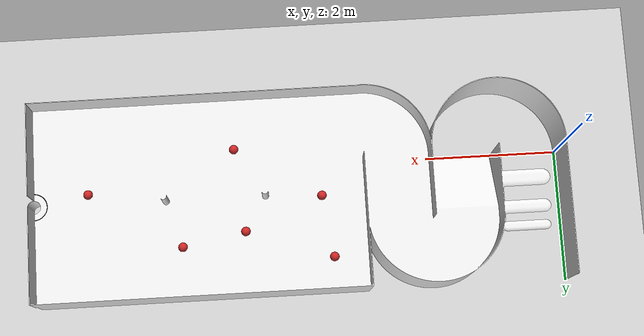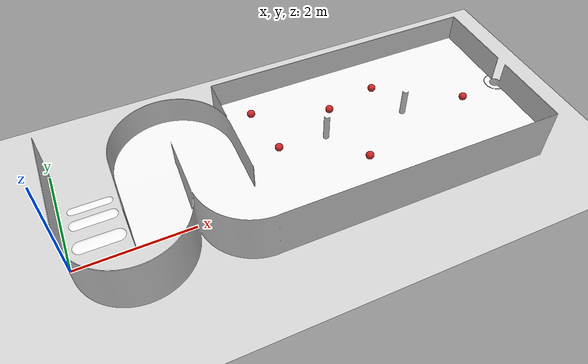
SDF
<sdf version="1.6">
 <world name="default">
  <model name="ground_plane">
   <static>1</static>
   <link name="link">
    <collision name="collision">
     <geometry><plane><normal>0 0 1</normal><size>100 100</size></plane></geometry>
     <surface><friction><ode><mu>100</mu><mu2>50</mu2></ode></friction></surface>
    </collision>
    <visual name="visual">
     <cast_shadows>0</cast_shadows>
     <geometry><plane><normal>0 0 1</normal><size>100 100</size></plane></geometry>
     <material>
      <script><uri>file://media/materials/scripts/gazebo.material</uri><name>Gazebo/Grey</name></script>
     </material>
    </visual>
   </link>
  </model>
  <light name="sun" type="directional">
   <pose>0 0 10 0 -0 0</pose>
   <diffuse>0.8 0.8 0.8 1</diffuse>
   <specular>0.1 0.1 0.1 1</specular>
   <attenuation>
    <range>1000</range>
    <constant>0.9</constant>
    <linear>0.01</linear>
    <quadratic>0.001</quadratic>
   </attenuation>
   <direction>-0.5 0.5 -1</direction>
  </light>
  <model name="field">
   <pose>0 0 0 1.5707 -0 -1.5707</pose>
   <static>1</static>
   <link name="field">
    <collision name="field_collision">
     <geometry><mesh><uri>file://worlds/map_final_3.stl</uri><scale>0.1 0.1 0.1</scale></mesh></geometry>
     <max_contacts>100</max_contacts>
     <surface><friction><ode><mu>100</mu><mu2>50</mu2></ode></friction></surface>
    </collision>
    <visual name="field_visual">
     <geometry><mesh><uri>file://worlds/map_final_3.stl</uri><scale>0.1 0.1 0.1</scale></mesh></geometry>
     <material>
      <script><uri>file://media/materials/scripts/gazebo.material</uri><name>Gazebo/White</name></script>
     </material>
    </visual>
   </link>
  </model>
  <model name="line2">
   <pose>0 0 0.01 1.5707 -0 -1.5707</pose>
   <static>1</static>
   <link name="line">
    <visual name="field_visual">
     <geometry><mesh><uri>file://worlds/map_final_3_goalline.stl</uri><scale>0.1 0.1 0.1</scale></mesh></geometry>
     <material>
      <script><uri>file://media/materials/scripts/gazebo.material</uri><name>Gazebo/Black</name></script>
     </material>
    </visual>
   </link>
  </model>
  <gravity>0 0 -9.8</gravity>
  <magnetic_field>6e-06 2.3e-05 -4.2e-05</magnetic_field>
  <atmosphere type="adiabatic"/>
  <physics name="default_physics" default="0" type="ode">
   <max_step_size>0.0004</max_step_size>
   <real_time_factor>1</real_time_factor>
   <real_time_update_rate>2500</real_time_update_rate>
  </physics>
  <scene><ambient>0.4 0.4 0.4 1</ambient><background>0.7 0.7 0.7 1</background><shadows>1</shadows></scene>
  <spherical_coordinates>
   <surface_model>EARTH_WGS84</surface_model>
   <latitude_deg>0</latitude_deg>
   <longitude_deg>0</longitude_deg>
   <elevation>0</elevation>
   <heading_deg>0</heading_deg>
  </spherical_coordinates>
  <model name="blue_ball_3">
   <link name="link_0">
    <inertial>
     <mass>0.1</mass>
     <inertia><ixx>0.11</ixx><ixy>0</ixy><ixz>0</ixz><iyy>0.11</iyy><iyz>0</iyz><izz>0.11</izz></inertia>
    </inertial>
    <visual name="visual">
     <geometry><sphere><radius>0.07</radius></sphere></geometry>
     <material>
      <lighting>1</lighting>
      <script><uri>file://media/materials/scripts/gazebo.material</uri><name>Gazebo/Red</name></script>
      <ambient>0 0 1 1</ambient>
      <diffuse>0 0 0.5 1</diffuse>
      <specular>0.01 0.01 0.5 1</specular>
      <emissive>0 0 0.5 1</emissive>
      <shader type="vertex"><normal_map>__default__</normal_map></shader>
     </material>
    </visual>
    <collision name="collision">
     <geometry><sphere><radius>0.07</radius></sphere></geometry>
     <surface>
      <friction>
       <ode><mu>0.05</mu><mu2>0.05</mu2><fdir1>0 0 0</fdir1><slip1>0.1</slip1><slip2>0.1</slip2></ode>
       <torsional>
        <coefficient>10.57</coefficient>
        <patch_radius>0.5</patch_radius>
        <surface_radius>0</surface_radius>
        <use_patch_radius>1</use_patch_radius>
        <ode><slip>0.1</slip></ode>
       </torsional>
      </friction>
      <bounce><restitution_coefficient>0</restitution_coefficient><threshold>1e+06</threshold></bounce>
      <contact>
       <collide_without_contact>0</collide_without_contact>
       <collide_without_contact_bitmask>1</collide_without_contact_bitmask>
       <collide_bitmask>1</collide_bitmask>
       <ode>
        <soft_cfm>0</soft_cfm>
        <soft_erp>0.2</soft_erp>
        <kp>1e+13</kp>
        <kd>1</kd>
        <max_vel>10</max_vel>
        <min_depth>0</min_depth>
       </ode>
       <bullet>
        <split_impulse>1</split_impulse>
        <split_impulse_penetration_threshold>-0.01</split_impulse_penetration_threshold>
        <soft_cfm>0</soft_cfm>
        <soft_erp>0.2</soft_erp>
        <kp>1e+13</kp>
        <kd>1</kd>
       </bullet>
      </contact>
     </surface>
    </collision>
   </link>
   <static>0</static>
   <pose>3.52552 1.50395 0.56966 -0.000663 0.001649 -1e-06</pose>
  </model>
  <model name="blue_ball_3_0">
   <link name="link_0">
    <inertial>
     <mass>0.1</mass>
     <inertia><ixx>0.11</ixx><ixy>0</ixy><ixz>0</ixz><iyy>0.11</iyy><iyz>0</iyz><izz>0.11</izz></inertia>
    </inertial>
    <visual name="visual">
     <geometry><sphere><radius>0.07</radius></sphere></geometry>
     <material>
      <lighting>1</lighting>
      <script><uri>file://media/materials/scripts/gazebo.material</uri><name>Gazebo/Red</name></script>
      <ambient>0 0 1 1</ambient>
      <diffuse>0 0 0.5 1</diffuse>
      <specular>0.01 0.01 0.5 1</specular>
      <emissive>0 0 0.5 1</emissive>
      <shader type="vertex"><normal_map>__default__</normal_map></shader>
     </material>
    </visual>
    <collision name="collision">
     <geometry><sphere><radius>0.07</radius></sphere></geometry>
     <surface>
      <friction>
       <ode><mu>0.05</mu><mu2>0.05</mu2><fdir1>0 0 0</fdir1><slip1>0.1</slip1><slip2>0.1</slip2></ode>
       <torsional>
        <coefficient>10.57</coefficient>
        <patch_radius>0.5</patch_radius>
        <surface_radius>0</surface_radius>
        <use_patch_radius>1</use_patch_radius>
        <ode><slip>0.1</slip></ode>
       </torsional>
      </friction>
      <bounce><restitution_coefficient>0</restitution_coefficient><threshold>1e+06</threshold></bounce>
      <contact>
       <collide_without_contact>0</collide_without_contact>
       <collide_without_contact_bitmask>1</collide_without_contact_bitmask>
       <collide_bitmask>1</collide_bitmask>
       <ode>
        <soft_cfm>0</soft_cfm>
        <soft_erp>0.2</soft_erp>
        <kp>1e+13</kp>
        <kd>1</kd>
        <max_vel>10</max_vel>
        <min_depth>0</min_depth>
       </ode>
       <bullet>
        <split_impulse>1</split_impulse>
        <split_impulse_penetration_threshold>-0.01</split_impulse_penetration_threshold>
        <soft_cfm>0</soft_cfm>
        <soft_erp>0.2</soft_erp>
        <kp>1e+13</kp>
        <kd>1</kd>
       </bullet>
      </contact>
     </surface>
    </collision>
   </link>
   <static>0</static>
   <pose>4.83132 1.05192 0.569535 0 0.000363 0</pose>
  </model>
  <model name="blue_ball_3_1">
   <link name="link_0">
    <inertial>
     <mass>0.1</mass>
     <inertia><ixx>0.11</ixx><ixy>0</ixy><ixz>0</ixz><iyy>0.11</iyy><iyz>0</iyz><izz>0.11</izz></inertia>
    </inertial>
    <visual name="visual">
     <geometry><sphere><radius>0.07</radius></sphere></geometry>
     <material>
      <lighting>1</lighting>
      <script><uri>file://media/materials/scripts/gazebo.material</uri><name>Gazebo/Red</name></script>
      <ambient>0 0 1 1</ambient>
      <diffuse>0 0 0.5 1</diffuse>
      <specular>0.01 0.01 0.5 1</specular>
      <emissive>0 0 0.5 1</emissive>
      <shader type="vertex"><normal_map>__default__</normal_map></shader>
     </material>
    </visual>
    <collision name="collision">
     <geometry><sphere><radius>0.07</radius></sphere></geometry>
     <surface>
      <friction>
       <ode><mu>0.05</mu><mu2>0.05</mu2><fdir1>0 0 0</fdir1><slip1>0.1</slip1><slip2>0.1</slip2></ode>
       <torsional>
        <coefficient>10.57</coefficient>
        <patch_radius>0.5</patch_radius>
        <surface_radius>0</surface_radius>
        <use_patch_radius>1</use_patch_radius>
        <ode><slip>0.1</slip></ode>
       </torsional>
      </friction>
      <bounce><restitution_coefficient>0</restitution_coefficient><threshold>1e+06</threshold></bounce>
      <contact>
       <collide_without_contact>0</collide_without_contact>
       <collide_without_contact_bitmask>1</collide_without_contact_bitmask>
       <collide_bitmask>1</collide_bitmask>
       <ode>
        <soft_cfm>0</soft_cfm>
        <soft_erp>0.2</soft_erp>
        <kp>1e+13</kp>
        <kd>1</kd>
        <max_vel>10</max_vel>
        <min_depth>0</min_depth>
       </ode>
       <bullet>
        <split_impulse>1</split_impulse>
        <split_impulse_penetration_threshold>-0.01</split_impulse_penetration_threshold>
        <soft_cfm>0</soft_cfm>
        <soft_erp>0.2</soft_erp>
        <kp>1e+13</kp>
        <kd>1</kd>
       </bullet>
      </contact>
     </surface>
    </collision>
   </link>
   <static>0</static>
   <pose>4.95495 -0.207251 0.569515 0 0.000727 0</pose>
  </model>
  <model name="red_ball_3">
   <link name="link_0">
    <inertial>
     <mass>0.1</mass>
     <inertia><ixx>0.11</ixx><ixy>0</ixy><ixz>0</ixz><iyy>0.11</iyy><iyz>0</iyz><izz>0.11</izz></inertia>
    </inertial>
    <visual name="visual">
     <geometry><sphere><radius>0.07</radius></sphere></geometry>
     <material>
      <lighting>1</lighting>
      <script><uri>file://media/materials/scripts/gazebo.material</uri><name>Gazebo/Red</name></script>
      <ambient>1 0 0 1</ambient>
      <diffuse>0.5 0 0 1</diffuse>
      <specular>0.5 0.01 0.01 1</specular>
      <emissive>0.5 0 0 1</emissive>
      <shader type="vertex"><normal_map>__default__</normal_map></shader>
     </material>
    </visual>
    <collision name="collision">
     <geometry><sphere><radius>0.07</radius></sphere></geometry>
     <surface>
      <friction>
       <ode><mu>0.05</mu><mu2>0.05</mu2><fdir1>0 0 0</fdir1><slip1>0.1</slip1><slip2>0.1</slip2></ode>
       <torsional>
        <coefficient>10.57</coefficient>
        <patch_radius>0.5</patch_radius>
        <surface_radius>0</surface_radius>
        <use_patch_radius>1</use_patch_radius>
        <ode><slip>0.1</slip></ode>
       </torsional>
      </friction>
      <bounce><restitution_coefficient>0</restitution_coefficient><threshold>1e+06</threshold></bounce>
      <contact>
       <collide_without_contact>0</collide_without_contact>
       <collide_without_contact_bitmask>1</collide_without_contact_bitmask>
       <collide_bitmask>1</collide_bitmask>
       <ode>
        <soft_cfm>0</soft_cfm>
        <soft_erp>0.2</soft_erp>
        <kp>1e+13</kp>
        <kd>1</kd>
        <max_vel>10</max_vel>
        <min_depth>0</min_depth>
       </ode>
       <bullet>
        <split_impulse>1</split_impulse>
        <split_impulse_penetration_threshold>-0.01</split_impulse_penetration_threshold>
        <soft_cfm>0</soft_cfm>
        <soft_erp>0.2</soft_erp>
        <kp>1e+13</kp>
        <kd>1</kd>
       </bullet>
      </contact>
     </surface>
    </collision>
   </link>
   <static>0</static>
   <pose>3.662 0.569454 0.569647 0 0.000361 0</pose>
  </model>
  <model name="red_ball_3_0">
   <link name="link_0">
    <inertial>
     <mass>0.1</mass>
     <inertia><ixx>0.11</ixx><ixy>0</ixy><ixz>0</ixz><iyy>0.11</iyy><iyz>0</iyz><izz>0.11</izz></inertia>
    </inertial>
    <visual name="visual">
     <geometry><sphere><radius>0.07</radius></sphere></geometry>
     <material>
      <lighting>1</lighting>
      <script><uri>file://media/materials/scripts/gazebo.material</uri><name>Gazebo/Red</name></script>
      <ambient>1 0 0 1</ambient>
      <diffuse>0.5 0 0 1</diffuse>
      <specular>0.5 0.01 0.01 1</specular>
      <emissive>0.5 0 0 1</emissive>
      <shader type="vertex"><normal_map>__default__</normal_map></shader>
     </material>
    </visual>
    <collision name="collision">
     <geometry><sphere><radius>0.07</radius></sphere></geometry>
     <surface>
      <friction>
       <ode><mu>0.05</mu><mu2>0.05</mu2><fdir1>0 0 0</fdir1><slip1>0.1</slip1><slip2>0.1</slip2></ode>
       <torsional>
        <coefficient>10.57</coefficient>
        <patch_radius>0.5</patch_radius>
        <surface_radius>0</surface_radius>
        <use_patch_radius>1</use_patch_radius>
        <ode><slip>0.1</slip></ode>
       </torsional>
      </friction>
      <bounce><restitution_coefficient>0</restitution_coefficient><threshold>1e+06</threshold></bounce>
      <contact>
       <collide_without_contact>0</collide_without_contact>
       <collide_without_contact_bitmask>1</collide_without_contact_bitmask>
       <collide_bitmask>1</collide_bitmask>
       <ode>
        <soft_cfm>0</soft_cfm>
        <soft_erp>0.2</soft_erp>
        <kp>1e+13</kp>
        <kd>1</kd>
        <max_vel>10</max_vel>
        <min_depth>0</min_depth>
       </ode>
       <bullet>
        <split_impulse>1</split_impulse>
        <split_impulse_penetration_threshold>-0.01</split_impulse_penetration_threshold>
        <soft_cfm>0</soft_cfm>
        <soft_erp>0.2</soft_erp>
        <kp>1e+13</kp>
        <kd>1</kd>
       </bullet>
      </contact>
     </surface>
    </collision>
   </link>
   <static>0</static>
   <pose>5.78229 1.23679 0.569443 0 0.00033 0</pose>
  </model>
  <model name="red_ball_3_1">
   <link name="link_0">
    <inertial>
     <mass>0.1</mass>
     <inertia><ixx>0.11</ixx><ixy>0</ixy><ixz>0</ixz><iyy>0.11</iyy><iyz>0</iyz><izz>0.11</izz></inertia>
    </inertial>
    <visual name="visual">
     <geometry><sphere><radius>0.07</radius></sphere></geometry>
     <material>
      <lighting>1</lighting>
      <script><uri>file://media/materials/scripts/gazebo.material</uri><name>Gazebo/Red</name></script>
      <ambient>1 0 0 1</ambient>
      <diffuse>0.5 0 0 1</diffuse>
      <specular>0.5 0.01 0.01 1</specular>
      <emissive>0.5 0 0 1</emissive>
      <shader type="vertex"><normal_map>__default__</normal_map></shader>
     </material>
    </visual>
    <collision name="collision">
     <geometry><sphere><radius>0.07</radius></sphere></geometry>
     <surface>
      <friction>
       <ode><mu>0.05</mu><mu2>0.05</mu2><fdir1>0 0 0</fdir1><slip1>0.1</slip1><slip2>0.1</slip2></ode>
       <torsional>
        <coefficient>10.57</coefficient>
        <patch_radius>0.5</patch_radius>
        <surface_radius>0</surface_radius>
        <use_patch_radius>1</use_patch_radius>
        <ode><slip>0.1</slip></ode>
       </torsional>
      </friction>
      <bounce><restitution_coefficient>0</restitution_coefficient><threshold>1e+06</threshold></bounce>
      <contact>
       <collide_without_contact>0</collide_without_contact>
       <collide_without_contact_bitmask>1</collide_without_contact_bitmask>
       <collide_bitmask>1</collide_bitmask>
       <ode>
        <soft_cfm>0</soft_cfm>
        <soft_erp>0.2</soft_erp>
        <kp>1e+13</kp>
        <kd>1</kd>
        <max_vel>10</max_vel>
        <min_depth>0</min_depth>
       </ode>
       <bullet>
        <split_impulse>1</split_impulse>
        <split_impulse_penetration_threshold>-0.01</split_impulse_penetration_threshold>
        <soft_cfm>0</soft_cfm>
        <soft_erp>0.2</soft_erp>
        <kp>1e+13</kp>
        <kd>1</kd>
       </bullet>
      </contact>
     </surface>
    </collision>
   </link>
   <static>0</static>
   <pose>7.17535 0.364046 0.569309 -2.27068 0.513608 -1.0325</pose>
  </model>
 </world>
</sdf>
